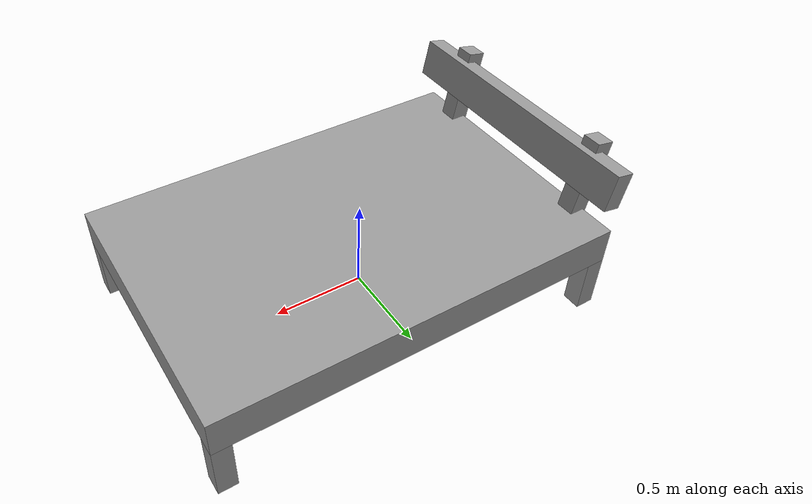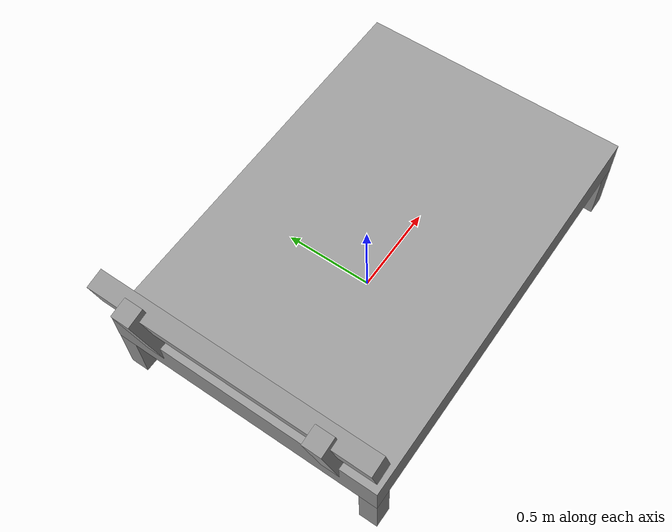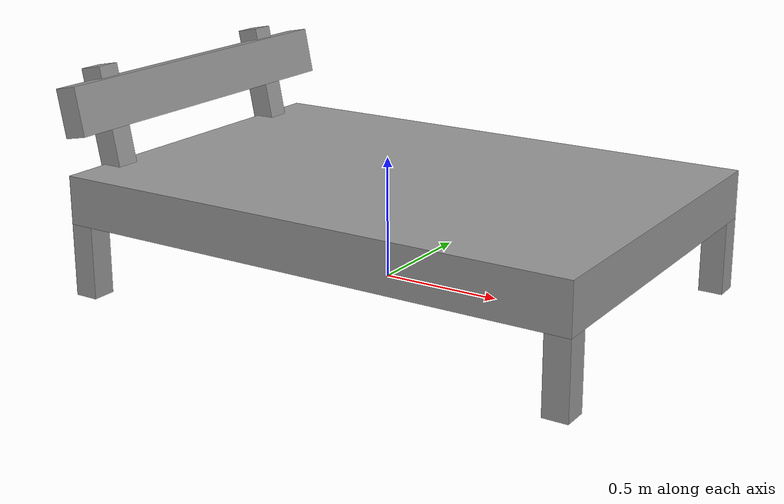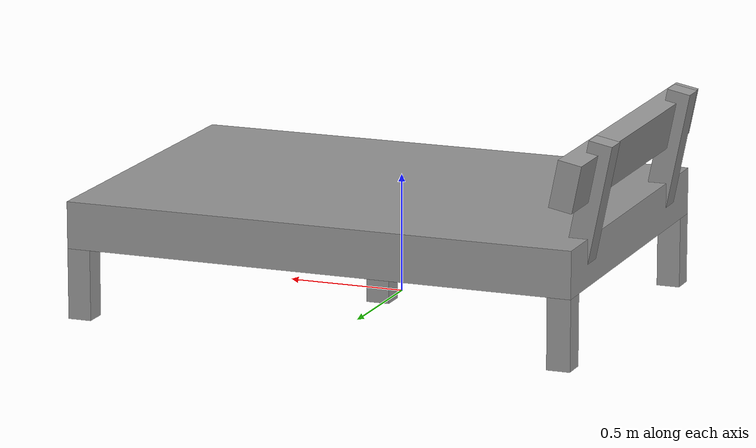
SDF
<?xml version='1.0'?>
<sdf version='1.6'>
  <model name='bed'>
    <link name='link_0'>
      <pose frame=''>0.088421 0 0.349817 0 -0 0</pose>
      <inertial>
        <mass>1</mass>
        <inertia>
          <ixx>0.166667</ixx>
          <ixy>0</ixy>
          <ixz>0</ixz>
          <iyy>0.166667</iyy>
          <iyz>0</iyz>
          <izz>0.166667</izz>
        </inertia>
        <pose frame=''>0 0 0 0 -0 0</pose>
      </inertial>
      <gravity>1</gravity>
      <self_collide>0</self_collide>
      <kinematic>0</kinematic>
      <visual name='visual'>
        <pose frame=''>0 0 0 0 -0 0</pose>
        <geometry>
          <box>
            <size>2.2 1.5 0.2</size>
          </box>
        </geometry>
        <material>
          <lighting>1</lighting>
          <script>
            <uri>file://media/materials/scripts/gazebo.material</uri>
            <name>Gazebo/Grey</name>
          </script>
          <shader type='pixel'>
            <normal_map>__default__</normal_map>
          </shader>
          <ambient>0.3 0.3 0.3 1</ambient>
          <diffuse>0.7 0.7 0.7 1</diffuse>
          <specular>0.01 0.01 0.01 1</specular>
          <emissive>0 0 0 1</emissive>
        </material>
        <transparency>0</transparency>
        <cast_shadows>1</cast_shadows>
      </visual>
      <collision name='collision'>
        <laser_retro>0</laser_retro>
        <max_contacts>10</max_contacts>
        <pose frame=''>0 0 0 0 -0 0</pose>
        <geometry>
          <box>
            <size>2.2 1.5 0.2</size>
          </box>
        </geometry>
        <surface>
          <friction>
            <ode>
              <mu>1</mu>
              <mu2>1</mu2>
              <fdir1>0 0 0</fdir1>
              <slip1>0</slip1>
              <slip2>0</slip2>
            </ode>
            <torsional>
              <coefficient>1</coefficient>
              <patch_radius>0</patch_radius>
              <surface_radius>0</surface_radius>
              <use_patch_radius>1</use_patch_radius>
              <ode>
                <slip>0</slip>
              </ode>
            </torsional>
          </friction>
          <bounce>
            <restitution_coefficient>0</restitution_coefficient>
            <threshold>1e+06</threshold>
          </bounce>
          <contact>
            <collide_without_contact>0</collide_without_contact>
            <collide_without_contact_bitmask>1</collide_without_contact_bitmask>
            <collide_bitmask>1</collide_bitmask>
            <ode>
              <soft_cfm>0</soft_cfm>
              <soft_erp>0.2</soft_erp>
              <kp>1e+13</kp>
              <kd>1</kd>
              <max_vel>0.01</max_vel>
              <min_depth>0</min_depth>
            </ode>
            <bullet>
              <split_impulse>1</split_impulse>
              <split_impulse_penetration_threshold>-0.01</split_impulse_penetration_threshold>
              <soft_cfm>0</soft_cfm>
              <soft_erp>0.2</soft_erp>
              <kp>1e+13</kp>
              <kd>1</kd>
            </bullet>
          </contact>
        </surface>
      </collision>
    </link>
    <link name='link_2'>
      <pose frame=''>0.088421 0 0.099817 0 -0 0</pose>
      <inertial>
        <mass>1</mass>
        <inertia>
          <ixx>0.166667</ixx>
          <ixy>0</ixy>
          <ixz>0</ixz>
          <iyy>0.166667</iyy>
          <iyz>0</iyz>
          <izz>0.166667</izz>
        </inertia>
        <pose frame=''>0 0 0 0 -0 0</pose>
      </inertial>
      <gravity>1</gravity>
      <self_collide>0</self_collide>
      <kinematic>0</kinematic>
      <visual name='visual'>
        <pose frame=''>0 0 0 0 -0 0</pose>
        <geometry>
          <box>
            <size>0.1 0.1 0.3</size>
          </box>
        </geometry>
        <material>
          <lighting>1</lighting>
          <script>
            <uri>file://media/materials/scripts/gazebo.material</uri>
            <name>Gazebo/Grey</name>
          </script>
          <shader type='pixel'>
            <normal_map>__default__</normal_map>
          </shader>
          <ambient>0.3 0.3 0.3 1</ambient>
          <diffuse>0.7 0.7 0.7 1</diffuse>
          <specular>0.01 0.01 0.01 1</specular>
          <emissive>0 0 0 1</emissive>
        </material>
        <transparency>0</transparency>
        <cast_shadows>1</cast_shadows>
      </visual>
      <collision name='collision'>
        <laser_retro>0</laser_retro>
        <max_contacts>10</max_contacts>
        <pose frame=''>0 0 0 0 -0 0</pose>
        <geometry>
          <box>
            <size>0.1 0.1 0.3</size>
          </box>
        </geometry>
        <surface>
          <friction>
            <ode>
              <mu>1</mu>
              <mu2>1</mu2>
              <fdir1>0 0 0</fdir1>
              <slip1>0</slip1>
              <slip2>0</slip2>
            </ode>
            <torsional>
              <coefficient>1</coefficient>
              <patch_radius>0</patch_radius>
              <surface_radius>0</surface_radius>
              <use_patch_radius>1</use_patch_radius>
              <ode>
                <slip>0</slip>
              </ode>
            </torsional>
          </friction>
          <bounce>
            <restitution_coefficient>0</restitution_coefficient>
            <threshold>1e+06</threshold>
          </bounce>
          <contact>
            <collide_without_contact>0</collide_without_contact>
            <collide_without_contact_bitmask>1</collide_without_contact_bitmask>
            <collide_bitmask>1</collide_bitmask>
            <ode>
              <soft_cfm>0</soft_cfm>
              <soft_erp>0.2</soft_erp>
              <kp>1e+13</kp>
              <kd>1</kd>
              <max_vel>0.01</max_vel>
              <min_depth>0</min_depth>
            </ode>
            <bullet>
              <split_impulse>1</split_impulse>
              <split_impulse_penetration_threshold>-0.01</split_impulse_penetration_threshold>
              <soft_cfm>0</soft_cfm>
              <soft_erp>0.2</soft_erp>
              <kp>1e+13</kp>
              <kd>1</kd>
            </bullet>
          </contact>
        </surface>
      </collision>
    </link>
    <link name='link_2_clone'>
      <pose frame=''>-0.961579 -0.7 0.099817 0 -0 0</pose>
      <inertial>
        <mass>1</mass>
        <inertia>
          <ixx>0.166667</ixx>
          <ixy>0</ixy>
          <ixz>0</ixz>
          <iyy>0.166667</iyy>
          <iyz>0</iyz>
          <izz>0.166667</izz>
        </inertia>
        <pose frame=''>0 0 0 0 -0 0</pose>
      </inertial>
      <self_collide>0</self_collide>
      <kinematic>0</kinematic>
      <visual name='visual'>
        <pose frame=''>0 0 0 0 -0 0</pose>
        <geometry>
          <box>
            <size>0.1 0.1 0.3</size>
          </box>
        </geometry>
        <material>
          <lighting>1</lighting>
          <script>
            <uri>file://media/materials/scripts/gazebo.material</uri>
            <name>Gazebo/Grey</name>
          </script>
          <shader type='pixel'>
            <normal_map>__default__</normal_map>
          </shader>
          <ambient>0.3 0.3 0.3 1</ambient>
          <diffuse>0.7 0.7 0.7 1</diffuse>
          <specular>0.01 0.01 0.01 1</specular>
          <emissive>0 0 0 1</emissive>
        </material>
        <transparency>0</transparency>
        <cast_shadows>1</cast_shadows>
      </visual>
      <collision name='collision'>
        <laser_retro>0</laser_retro>
        <max_contacts>10</max_contacts>
        <pose frame=''>0 0 0 0 -0 0</pose>
        <geometry>
          <box>
            <size>0.1 0.1 0.3</size>
          </box>
        </geometry>
        <surface>
          <friction>
            <ode>
              <mu>1</mu>
              <mu2>1</mu2>
              <fdir1>0 0 0</fdir1>
              <slip1>0</slip1>
              <slip2>0</slip2>
            </ode>
            <torsional>
              <coefficient>1</coefficient>
              <patch_radius>0</patch_radius>
              <surface_radius>0</surface_radius>
              <use_patch_radius>1</use_patch_radius>
              <ode>
                <slip>0</slip>
              </ode>
            </torsional>
          </friction>
          <bounce>
            <restitution_coefficient>0</restitution_coefficient>
            <threshold>1e+06</threshold>
          </bounce>
          <contact>
            <collide_without_contact>0</collide_without_contact>
            <collide_without_contact_bitmask>1</collide_without_contact_bitmask>
            <collide_bitmask>1</collide_bitmask>
            <ode>
              <soft_cfm>0</soft_cfm>
              <soft_erp>0.2</soft_erp>
              <kp>1e+13</kp>
              <kd>1</kd>
              <max_vel>0.01</max_vel>
              <min_depth>0</min_depth>
            </ode>
            <bullet>
              <split_impulse>1</split_impulse>
              <split_impulse_penetration_threshold>-0.01</split_impulse_penetration_threshold>
              <soft_cfm>0</soft_cfm>
              <soft_erp>0.2</soft_erp>
              <kp>1e+13</kp>
              <kd>1</kd>
            </bullet>
          </contact>
        </surface>
      </collision>
    </link>
    <link name='link_2_clone_0'>
      <pose frame=''>1.13842 -0.7 0.099817 0 -0 0</pose>
      <inertial>
        <mass>1</mass>
        <inertia>
          <ixx>0.166667</ixx>
          <ixy>0</ixy>
          <ixz>0</ixz>
          <iyy>0.166667</iyy>
          <iyz>0</iyz>
          <izz>0.166667</izz>
        </inertia>
        <pose frame=''>0 0 0 0 -0 0</pose>
      </inertial>
      <self_collide>0</self_collide>
      <kinematic>0</kinematic>
      <visual name='visual'>
        <pose frame=''>0 0 0 0 -0 0</pose>
        <geometry>
          <box>
            <size>0.1 0.1 0.3</size>
          </box>
        </geometry>
        <material>
          <lighting>1</lighting>
          <script>
            <uri>file://media/materials/scripts/gazebo.material</uri>
            <name>Gazebo/Grey</name>
          </script>
          <shader type='pixel'>
            <normal_map>__default__</normal_map>
          </shader>
          <ambient>0.3 0.3 0.3 1</ambient>
          <diffuse>0.7 0.7 0.7 1</diffuse>
          <specular>0.01 0.01 0.01 1</specular>
          <emissive>0 0 0 1</emissive>
        </material>
        <transparency>0</transparency>
        <cast_shadows>1</cast_shadows>
      </visual>
      <collision name='collision'>
        <laser_retro>0</laser_retro>
        <max_contacts>10</max_contacts>
        <pose frame=''>0 0 0 0 -0 0</pose>
        <geometry>
          <box>
            <size>0.1 0.1 0.3</size>
          </box>
        </geometry>
        <surface>
          <friction>
            <ode>
              <mu>1</mu>
              <mu2>1</mu2>
              <fdir1>0 0 0</fdir1>
              <slip1>0</slip1>
              <slip2>0</slip2>
            </ode>
            <torsional>
              <coefficient>1</coefficient>
              <patch_radius>0</patch_radius>
              <surface_radius>0</surface_radius>
              <use_patch_radius>1</use_patch_radius>
              <ode>
                <slip>0</slip>
              </ode>
            </torsional>
          </friction>
          <bounce>
            <restitution_coefficient>0</restitution_coefficient>
            <threshold>1e+06</threshold>
          </bounce>
          <contact>
            <collide_without_contact>0</collide_without_contact>
            <collide_without_contact_bitmask>1</collide_without_contact_bitmask>
            <collide_bitmask>1</collide_bitmask>
            <ode>
              <soft_cfm>0</soft_cfm>
              <soft_erp>0.2</soft_erp>
              <kp>1e+13</kp>
              <kd>1</kd>
              <max_vel>0.01</max_vel>
              <min_depth>0</min_depth>
            </ode>
            <bullet>
              <split_impulse>1</split_impulse>
              <split_impulse_penetration_threshold>-0.01</split_impulse_penetration_threshold>
              <soft_cfm>0</soft_cfm>
              <soft_erp>0.2</soft_erp>
              <kp>1e+13</kp>
              <kd>1</kd>
            </bullet>
          </contact>
        </surface>
      </collision>
    </link>
    <link name='link_2_clone_1'>
      <pose frame=''>1.13842 0.7 0.099817 0 -0 0</pose>
      <inertial>
        <mass>1</mass>
        <inertia>
          <ixx>0.166667</ixx>
          <ixy>0</ixy>
          <ixz>0</ixz>
          <iyy>0.166667</iyy>
          <iyz>0</iyz>
          <izz>0.166667</izz>
        </inertia>
        <pose frame=''>0 0 0 0 -0 0</pose>
      </inertial>
      <self_collide>0</self_collide>
      <kinematic>0</kinematic>
      <visual name='visual'>
        <pose frame=''>0 0 0 0 -0 0</pose>
        <geometry>
          <box>
            <size>0.1 0.1 0.3</size>
          </box>
        </geometry>
        <material>
          <lighting>1</lighting>
          <script>
            <uri>file://media/materials/scripts/gazebo.material</uri>
            <name>Gazebo/Grey</name>
          </script>
          <shader type='pixel'>
            <normal_map>__default__</normal_map>
          </shader>
          <ambient>0.3 0.3 0.3 1</ambient>
          <diffuse>0.7 0.7 0.7 1</diffuse>
          <specular>0.01 0.01 0.01 1</specular>
          <emissive>0 0 0 1</emissive>
        </material>
        <transparency>0</transparency>
        <cast_shadows>1</cast_shadows>
      </visual>
      <collision name='collision'>
        <laser_retro>0</laser_retro>
        <max_contacts>10</max_contacts>
        <pose frame=''>0 0 0 0 -0 0</pose>
        <geometry>
          <box>
            <size>0.1 0.1 0.3</size>
          </box>
        </geometry>
        <surface>
          <friction>
            <ode>
              <mu>1</mu>
              <mu2>1</mu2>
              <fdir1>0 0 0</fdir1>
              <slip1>0</slip1>
              <slip2>0</slip2>
            </ode>
            <torsional>
              <coefficient>1</coefficient>
              <patch_radius>0</patch_radius>
              <surface_radius>0</surface_radius>
              <use_patch_radius>1</use_patch_radius>
              <ode>
                <slip>0</slip>
              </ode>
            </torsional>
          </friction>
          <bounce>
            <restitution_coefficient>0</restitution_coefficient>
            <threshold>1e+06</threshold>
          </bounce>
          <contact>
            <collide_without_contact>0</collide_without_contact>
            <collide_without_contact_bitmask>1</collide_without_contact_bitmask>
            <collide_bitmask>1</collide_bitmask>
            <ode>
              <soft_cfm>0</soft_cfm>
              <soft_erp>0.2</soft_erp>
              <kp>1e+13</kp>
              <kd>1</kd>
              <max_vel>0.01</max_vel>
              <min_depth>0</min_depth>
            </ode>
            <bullet>
              <split_impulse>1</split_impulse>
              <split_impulse_penetration_threshold>-0.01</split_impulse_penetration_threshold>
              <soft_cfm>0</soft_cfm>
              <soft_erp>0.2</soft_erp>
              <kp>1e+13</kp>
              <kd>1</kd>
            </bullet>
          </contact>
        </surface>
      </collision>
    </link>
    <link name='link_2_clone_2'>
      <pose frame=''>-0.961579 0.7 0.099817 0 -0 0</pose>
      <inertial>
        <mass>1</mass>
        <inertia>
          <ixx>0.166667</ixx>
          <ixy>0</ixy>
          <ixz>0</ixz>
          <iyy>0.166667</iyy>
          <iyz>0</iyz>
          <izz>0.166667</izz>
        </inertia>
        <pose frame=''>0 0 0 0 -0 0</pose>
      </inertial>
      <self_collide>0</self_collide>
      <kinematic>0</kinematic>
      <visual name='visual'>
        <pose frame=''>0 0 0 0 -0 0</pose>
        <geometry>
          <box>
            <size>0.1 0.1 0.3</size>
          </box>
        </geometry>
        <material>
          <lighting>1</lighting>
          <script>
            <uri>file://media/materials/scripts/gazebo.material</uri>
            <name>Gazebo/Grey</name>
          </script>
          <shader type='pixel'>
            <normal_map>__default__</normal_map>
          </shader>
          <ambient>0.3 0.3 0.3 1</ambient>
          <diffuse>0.7 0.7 0.7 1</diffuse>
          <specular>0.01 0.01 0.01 1</specular>
          <emissive>0 0 0 1</emissive>
        </material>
        <transparency>0</transparency>
        <cast_shadows>1</cast_shadows>
      </visual>
      <collision name='collision'>
        <laser_retro>0</laser_retro>
        <max_contacts>10</max_contacts>
        <pose frame=''>0 0 0 0 -0 0</pose>
        <geometry>
          <box>
            <size>0.1 0.1 0.3</size>
          </box>
        </geometry>
        <surface>
          <friction>
            <ode>
              <mu>1</mu>
              <mu2>1</mu2>
              <fdir1>0 0 0</fdir1>
              <slip1>0</slip1>
              <slip2>0</slip2>
            </ode>
            <torsional>
              <coefficient>1</coefficient>
              <patch_radius>0</patch_radius>
              <surface_radius>0</surface_radius>
              <use_patch_radius>1</use_patch_radius>
              <ode>
                <slip>0</slip>
              </ode>
            </torsional>
          </friction>
          <bounce>
            <restitution_coefficient>0</restitution_coefficient>
            <threshold>1e+06</threshold>
          </bounce>
          <contact>
            <collide_without_contact>0</collide_without_contact>
            <collide_without_contact_bitmask>1</collide_without_contact_bitmask>
            <collide_bitmask>1</collide_bitmask>
            <ode>
              <soft_cfm>0</soft_cfm>
              <soft_erp>0.2</soft_erp>
              <kp>1e+13</kp>
              <kd>1</kd>
              <max_vel>0.01</max_vel>
              <min_depth>0</min_depth>
            </ode>
            <bullet>
              <split_impulse>1</split_impulse>
              <split_impulse_penetration_threshold>-0.01</split_impulse_penetration_threshold>
              <soft_cfm>0</soft_cfm>
              <soft_erp>0.2</soft_erp>
              <kp>1e+13</kp>
              <kd>1</kd>
            </bullet>
          </contact>
        </surface>
      </collision>
    </link>
    <link name='link_3'>
      <pose frame=''>-1.01158 -0.5 0.599817 0 -0.196 0</pose>
      <inertial>
        <mass>1</mass>
        <inertia>
          <ixx>0.166667</ixx>
          <ixy>0</ixy>
          <ixz>0</ixz>
          <iyy>0.166667</iyy>
          <iyz>0</iyz>
          <izz>0.166667</izz>
        </inertia>
        <pose frame=''>0 0 0 0 -0 0</pose>
      </inertial>
      <gravity>1</gravity>
      <self_collide>0</self_collide>
      <kinematic>0</kinematic>
      <visual name='visual'>
        <pose frame=''>0 0 0 0 -0 0</pose>
        <geometry>
          <box>
            <size>0.1 0.1 0.5</size>
          </box>
        </geometry>
        <material>
          <lighting>1</lighting>
          <script>
            <uri>file://media/materials/scripts/gazebo.material</uri>
            <name>Gazebo/Grey</name>
          </script>
          <shader type='pixel'>
            <normal_map>__default__</normal_map>
          </shader>
          <ambient>0.3 0.3 0.3 1</ambient>
          <diffuse>0.7 0.7 0.7 1</diffuse>
          <specular>0.01 0.01 0.01 1</specular>
          <emissive>0 0 0 1</emissive>
        </material>
        <transparency>0</transparency>
        <cast_shadows>1</cast_shadows>
      </visual>
      <collision name='collision'>
        <laser_retro>0</laser_retro>
        <max_contacts>10</max_contacts>
        <pose frame=''>0 0 0 0 -0 0</pose>
        <geometry>
          <box>
            <size>0.1 0.1 0.5</size>
          </box>
        </geometry>
        <surface>
          <friction>
            <ode>
              <mu>1</mu>
              <mu2>1</mu2>
              <fdir1>0 0 0</fdir1>
              <slip1>0</slip1>
              <slip2>0</slip2>
            </ode>
            <torsional>
              <coefficient>1</coefficient>
              <patch_radius>0</patch_radius>
              <surface_radius>0</surface_radius>
              <use_patch_radius>1</use_patch_radius>
              <ode>
                <slip>0</slip>
              </ode>
            </torsional>
          </friction>
          <bounce>
            <restitution_coefficient>0</restitution_coefficient>
            <threshold>1e+06</threshold>
          </bounce>
          <contact>
            <collide_without_contact>0</collide_without_contact>
            <collide_without_contact_bitmask>1</collide_without_contact_bitmask>
            <collide_bitmask>1</collide_bitmask>
            <ode>
              <soft_cfm>0</soft_cfm>
              <soft_erp>0.2</soft_erp>
              <kp>1e+13</kp>
              <kd>1</kd>
              <max_vel>0.01</max_vel>
              <min_depth>0</min_depth>
            </ode>
            <bullet>
              <split_impulse>1</split_impulse>
              <split_impulse_penetration_threshold>-0.01</split_impulse_penetration_threshold>
              <soft_cfm>0</soft_cfm>
              <soft_erp>0.2</soft_erp>
              <kp>1e+13</kp>
              <kd>1</kd>
            </bullet>
          </contact>
        </surface>
      </collision>
    </link>
    <link name='link_3_clone'>
      <pose frame=''>-1.01158 0.5 0.599817 0 -0.196 0</pose>
      <inertial>
        <mass>1</mass>
        <inertia>
          <ixx>0.166667</ixx>
          <ixy>0</ixy>
          <ixz>0</ixz>
          <iyy>0.166667</iyy>
          <iyz>0</iyz>
          <izz>0.166667</izz>
        </inertia>
        <pose frame=''>0 0 0 0 -0 0</pose>
      </inertial>
      <self_collide>0</self_collide>
      <kinematic>0</kinematic>
      <visual name='visual'>
        <pose frame=''>0 0 0 0 -0 0</pose>
        <geometry>
          <box>
            <size>0.1 0.1 0.5</size>
          </box>
        </geometry>
        <material>
          <lighting>1</lighting>
          <script>
            <uri>file://media/materials/scripts/gazebo.material</uri>
            <name>Gazebo/Grey</name>
          </script>
          <shader type='pixel'>
            <normal_map>__default__</normal_map>
          </shader>
          <ambient>0.3 0.3 0.3 1</ambient>
          <diffuse>0.7 0.7 0.7 1</diffuse>
          <specular>0.01 0.01 0.01 1</specular>
          <emissive>0 0 0 1</emissive>
        </material>
        <transparency>0</transparency>
        <cast_shadows>1</cast_shadows>
      </visual>
      <collision name='collision'>
        <laser_retro>0</laser_retro>
        <max_contacts>10</max_contacts>
        <pose frame=''>0 0 0 0 -0 0</pose>
        <geometry>
          <box>
            <size>0.1 0.1 0.5</size>
          </box>
        </geometry>
        <surface>
          <friction>
            <ode>
              <mu>1</mu>
              <mu2>1</mu2>
              <fdir1>0 0 0</fdir1>
              <slip1>0</slip1>
              <slip2>0</slip2>
            </ode>
            <torsional>
              <coefficient>1</coefficient>
              <patch_radius>0</patch_radius>
              <surface_radius>0</surface_radius>
              <use_patch_radius>1</use_patch_radius>
              <ode>
                <slip>0</slip>
              </ode>
            </torsional>
          </friction>
          <bounce>
            <restitution_coefficient>0</restitution_coefficient>
            <threshold>1e+06</threshold>
          </bounce>
          <contact>
            <collide_without_contact>0</collide_without_contact>
            <collide_without_contact_bitmask>1</collide_without_contact_bitmask>
            <collide_bitmask>1</collide_bitmask>
            <ode>
              <soft_cfm>0</soft_cfm>
              <soft_erp>0.2</soft_erp>
              <kp>1e+13</kp>
              <kd>1</kd>
              <max_vel>0.01</max_vel>
              <min_depth>0</min_depth>
            </ode>
            <bullet>
              <split_impulse>1</split_impulse>
              <split_impulse_penetration_threshold>-0.01</split_impulse_penetration_threshold>
              <soft_cfm>0</soft_cfm>
              <soft_erp>0.2</soft_erp>
              <kp>1e+13</kp>
              <kd>1</kd>
            </bullet>
          </contact>
        </surface>
      </collision>
    </link>
    <link name='link_5'>
      <pose frame=''>-0.982367 0 0.707711 0 -0.196 0</pose>
      <inertial>
        <mass>1</mass>
        <inertia>
          <ixx>0.166667</ixx>
          <ixy>0</ixy>
          <ixz>0</ixz>
          <iyy>0.166667</iyy>
          <iyz>0</iyz>
          <izz>0.166667</izz>
        </inertia>
        <pose frame=''>0 0 0 0 -0 0</pose>
      </inertial>
      <gravity>1</gravity>
      <self_collide>0</self_collide>
      <kinematic>0</kinematic>
      <visual name='visual'>
        <pose frame=''>0 0 0 0 -0 0</pose>
        <geometry>
          <box>
            <size>0.1 1.5 0.2</size>
          </box>
        </geometry>
        <material>
          <lighting>1</lighting>
          <script>
            <uri>file://media/materials/scripts/gazebo.material</uri>
            <name>Gazebo/Grey</name>
          </script>
          <shader type='pixel'>
            <normal_map>__default__</normal_map>
          </shader>
          <ambient>0.3 0.3 0.3 1</ambient>
          <diffuse>0.7 0.7 0.7 1</diffuse>
          <specular>0.01 0.01 0.01 1</specular>
          <emissive>0 0 0 1</emissive>
        </material>
        <transparency>0</transparency>
        <cast_shadows>1</cast_shadows>
      </visual>
      <collision name='collision'>
        <laser_retro>0</laser_retro>
        <max_contacts>10</max_contacts>
        <pose frame=''>0 0 0 0 -0 0</pose>
        <geometry>
          <box>
            <size>0.1 1.5 0.2</size>
          </box>
        </geometry>
        <surface>
          <friction>
            <ode>
              <mu>1</mu>
              <mu2>1</mu2>
              <fdir1>0 0 0</fdir1>
              <slip1>0</slip1>
              <slip2>0</slip2>
            </ode>
            <torsional>
              <coefficient>1</coefficient>
              <patch_radius>0</patch_radius>
              <surface_radius>0</surface_radius>
              <use_patch_radius>1</use_patch_radius>
              <ode>
                <slip>0</slip>
              </ode>
            </torsional>
          </friction>
          <bounce>
            <restitution_coefficient>0</restitution_coefficient>
            <threshold>1e+06</threshold>
          </bounce>
          <contact>
            <collide_without_contact>0</collide_without_contact>
            <collide_without_contact_bitmask>1</collide_without_contact_bitmask>
            <collide_bitmask>1</collide_bitmask>
            <ode>
              <soft_cfm>0</soft_cfm>
              <soft_erp>0.2</soft_erp>
              <kp>1e+13</kp>
              <kd>1</kd>
              <max_vel>0.01</max_vel>
              <min_depth>0</min_depth>
            </ode>
            <bullet>
              <split_impulse>1</split_impulse>
              <split_impulse_penetration_threshold>-0.01</split_impulse_penetration_threshold>
              <soft_cfm>0</soft_cfm>
              <soft_erp>0.2</soft_erp>
              <kp>1e+13</kp>
              <kd>1</kd>
            </bullet>
          </contact>
        </surface>
      </collision>
    </link>
    <joint name='link_0_JOINT_0' type='fixed'>
      <parent>link_0</parent>
      <child>link_2_clone</child>
      <pose frame=''>0 0 0 0 -0 0</pose>
      <physics>
        <ode>
          <limit>
            <cfm>0</cfm>
            <erp>0.2</erp>
          </limit>
          <suspension>
            <cfm>0</cfm>
            <erp>0.2</erp>
          </suspension>
        </ode>
      </physics>
    </joint>
    <joint name='link_0_JOINT_1' type='fixed'>
      <parent>link_0</parent>
      <child>link_2_clone_0</child>
      <pose frame=''>0 0 0 0 -0 0</pose>
      <physics>
        <ode>
          <limit>
            <cfm>0</cfm>
            <erp>0.2</erp>
          </limit>
          <suspension>
            <cfm>0</cfm>
            <erp>0.2</erp>
          </suspension>
        </ode>
      </physics>
    </joint>
    <joint name='link_0_JOINT_2' type='fixed'>
      <parent>link_0</parent>
      <child>link_2_clone_2</child>
      <pose frame=''>0 0 0 0 -0 0</pose>
      <physics>
        <ode>
          <limit>
            <cfm>0</cfm>
            <erp>0.2</erp>
          </limit>
          <suspension>
            <cfm>0</cfm>
            <erp>0.2</erp>
          </suspension>
        </ode>
      </physics>
    </joint>
    <joint name='link_0_JOINT_3' type='fixed'>
      <parent>link_0</parent>
      <child>link_2_clone_1</child>
      <pose frame=''>0 0 0 0 -0 0</pose>
      <physics>
        <ode>
          <limit>
            <cfm>0</cfm>
            <erp>0.2</erp>
          </limit>
          <suspension>
            <cfm>0</cfm>
            <erp>0.2</erp>
          </suspension>
        </ode>
      </physics>
    </joint>
    <joint name='link_0_JOINT_4' type='fixed'>
      <parent>link_0</parent>
      <child>link_2</child>
      <pose frame=''>0 0 0 0 -0 0</pose>
      <physics>
        <ode>
          <limit>
            <cfm>0</cfm>
            <erp>0.2</erp>
          </limit>
          <suspension>
            <cfm>0</cfm>
            <erp>0.2</erp>
          </suspension>
        </ode>
      </physics>
    </joint>
    <joint name='link_0_JOINT_5' type='fixed'>
      <parent>link_0</parent>
      <child>link_3</child>
      <pose frame=''>0 0 0 0 -0 0</pose>
      <physics>
        <ode>
          <limit>
            <cfm>0</cfm>
            <erp>0.2</erp>
          </limit>
          <suspension>
            <cfm>0</cfm>
            <erp>0.2</erp>
          </suspension>
        </ode>
      </physics>
    </joint>
    <joint name='link_0_JOINT_6' type='fixed'>
      <parent>link_0</parent>
      <child>link_3_clone</child>
      <pose frame=''>0 0 0 0 -0 0</pose>
      <physics>
        <ode>
          <limit>
            <cfm>0</cfm>
            <erp>0.2</erp>
          </limit>
          <suspension>
            <cfm>0</cfm>
            <erp>0.2</erp>
          </suspension>
        </ode>
      </physics>
    </joint>
    <joint name='link_3_JOINT_9' type='fixed'>
      <parent>link_3</parent>
      <child>link_5</child>
      <pose frame=''>0 0 0 0 -0 0</pose>
      <physics>
        <ode>
          <limit>
            <cfm>0</cfm>
            <erp>0.2</erp>
          </limit>
          <suspension>
            <cfm>0</cfm>
            <erp>0.2</erp>
          </suspension>
        </ode>
      </physics>
    </joint>
    <static>0</static>
    <allow_auto_disable>1</allow_auto_disable>
  </model>
</sdf>
